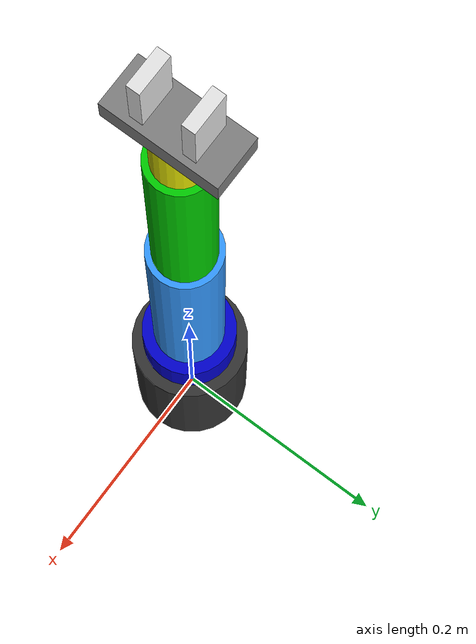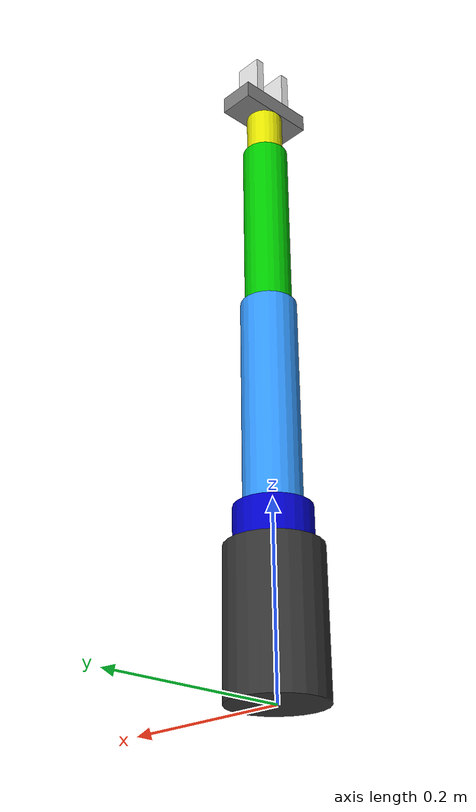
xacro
<?xml version="1.0"?>
<robot xmlns:xacro="http://www.ros.org/wiki/xacro" name="moving_robot">

  <!-- P2-1 치수 변수 선언 -->
  <xacro:property name="H" value="0.15" />   <!-- 바닥 ~ 어깨 높이 -->
  <xacro:property name="L2" value="0.25" />  <!-- 상완 길이 -->
  <xacro:property name="L3" value="0.20" />  <!-- 전완 길이 -->
  <xacro:property name="D" value="0.12" />   <!-- 손목 ~ grasp_point 거리 -->

  <!-- World Link -->
  <link name="world"/>

  <!-- Fixed Joint: world -> base_link -->
  <joint name="world_joint" type="fixed">
    <parent link="world"/>
    <child link="base_link"/>
    <origin xyz="0 0 0" rpy="0 0 0"/>
  </joint>

  <!-- Base Link -->
  <link name="base_link">
    <visual>
      <origin xyz="0 0 ${H/2}" rpy="0 0 0"/>
      <geometry>
        <cylinder radius="0.05" length="${H}"/>
      </geometry>
      <material name="dark_grey">
        <color rgba="0.2 0.2 0.2 1.0"/>
      </material>
    </visual>
  </link>

  <!-- Joint 1: Base 회전 (Z축, -3.14 ~ 3.14 rad)[cite: 1] -->
  <joint name="joint1" type="revolute">
    <parent link="base_link"/>
    <child link="link1"/>
    <origin xyz="0 0 ${H}" rpy="0 0 0"/>
    <axis xyz="0 0 1"/>
    <limit lower="-3.14" upper="3.14" effort="10.0" velocity="1.0"/>
  </joint>

  <link name="link1">
    <visual>
      <origin xyz="0 0 0.02" rpy="0 0 0"/>
      <geometry>
        <cylinder radius="0.04" length="0.04"/>
      </geometry>
      <material name="blue">
        <color rgba="0.0 0.0 0.8 1.0"/>
      </material>
    </visual>
  </link>

  <!-- Joint 2: 어깨 (Y축, -1.57 ~ 1.57 rad)[cite: 1] -->
  <joint name="joint2" type="revolute">
    <parent link="link1"/>
    <child link="link2"/>
    <origin xyz="0 0 0.02" rpy="0 0 0"/>
    <axis xyz="0 1 0"/>
    <limit lower="-1.57" upper="1.57" effort="10.0" velocity="1.0"/>
  </joint>

  <link name="link2">
    <visual>
      <origin xyz="0 0 ${L2/2}" rpy="0 0 0"/>
      <geometry>
        <cylinder radius="0.03" length="${L2}"/>
      </geometry>
      <material name="light_blue">
        <color rgba="0.2 0.6 1.0 1.0"/>
      </material>
    </visual>
  </link>

  <!-- Joint 3: 팔꿈치 (Y축, -2.50 ~ 2.50 rad)[cite: 1] -->
  <joint name="joint3" type="revolute">
    <parent link="link2"/>
    <child link="link3"/>
    <origin xyz="0 0 ${L2}" rpy="0 0 0"/>
    <axis xyz="0 1 0"/>
    <limit lower="-2.50" upper="2.50" effort="10.0" velocity="1.0"/>
  </joint>

  <link name="link3">
    <visual>
      <origin xyz="0 0 ${L3/2}" rpy="0 0 0"/>
      <geometry>
        <cylinder radius="0.025" length="${L3}"/>
      </geometry>
      <material name="green">
        <color rgba="0.0 0.8 0.0 1.0"/>
      </material>
    </visual>
  </link>

  <!-- Joint 4: 손목 (Y축, -2.00 ~ 2.00 rad)[cite: 1] -->
  <joint name="joint4" type="revolute">
    <parent link="link3"/>
    <child link="link4"/>
    <origin xyz="0 0 ${L3}" rpy="0 0 0"/>
    <axis xyz="0 1 0"/>
    <limit lower="-2.00" upper="2.00" effort="10.0" velocity="1.0"/>
  </joint>

  <link name="link4">
    <visual>
      <origin xyz="0 0 0.025" rpy="0 0 0"/>
      <geometry>
        <cylinder radius="0.02" length="0.05"/>
      </geometry>
      <material name="yellow">
        <color rgba="0.9 0.9 0.0 1.0"/>
      </material>
    </visual>
  </link>

  <!-- Fixed Joint: link4 -> gripper_base[cite: 1] -->
  <joint name="gripper_base_joint" type="fixed">
    <parent link="link4"/>
    <child link="gripper_base"/>
    <origin xyz="0 0 0.05" rpy="0 0 0"/>
  </joint>

  <link name="gripper_base">
    <visual>
      <origin xyz="0 0 0.01" rpy="0 0 0"/>
      <geometry>
        <box size="0.04 0.09 0.02"/>
      </geometry>
      <material name="grey">
        <color rgba="0.5 0.5 0.5 1.0"/>
      </material>
    </visual>
  </link>

  <!-- Finger Left Joint (Prismatic +Y, 0 ~ 0.04 m)[cite: 1] -->
  <joint name="finger_left_joint" type="prismatic">
    <parent link="gripper_base"/>
    <child link="finger_left"/>
    <origin xyz="0 0.02 0.04" rpy="0 0 0"/>
    <axis xyz="0 1 0"/>
    <limit lower="0.0" upper="0.04" effort="5.0" velocity="0.1"/>
  </joint>

  <link name="finger_left">
    <visual>
      <origin xyz="0 0 0" rpy="0 0 0"/>
      <geometry>
        <box size="0.03 0.01 0.06"/>
      </geometry>
      <material name="white">
        <color rgba="0.9 0.9 0.9 1.0"/>
      </material>
    </visual>
  </link>

  <!-- Finger Right Joint (Prismatic -Y, 0 ~ 0.04 m)[cite: 1] -->
  <joint name="finger_right_joint" type="prismatic">
    <parent link="gripper_base"/>
    <child link="finger_right"/>
    <origin xyz="0 -0.02 0.04" rpy="0 0 0"/>
    <axis xyz="0 -1 0"/>
    <limit lower="0.0" upper="0.04" effort="5.0" velocity="0.1"/>
  </joint>

  <link name="finger_right">
    <visual>
      <origin xyz="0 0 0" rpy="0 0 0"/>
      <geometry>
        <box size="0.03 0.01 0.06"/>
      </geometry>
      <material name="white">
        <color rgba="0.9 0.9 0.9 1.0"/>
      </material>
    </visual>
  </link>

  <!-- Fixed Joint: gripper_base -> grasp_point (두 손가락 중앙)[cite: 1] -->
  <joint name="grasp_point_joint" type="fixed">
    <parent link="gripper_base"/>
    <child link="grasp_point"/>
    <origin xyz="0 0 0.07" rpy="0 0 0"/>
  </joint>

  <link name="grasp_point"/>

</robot>
